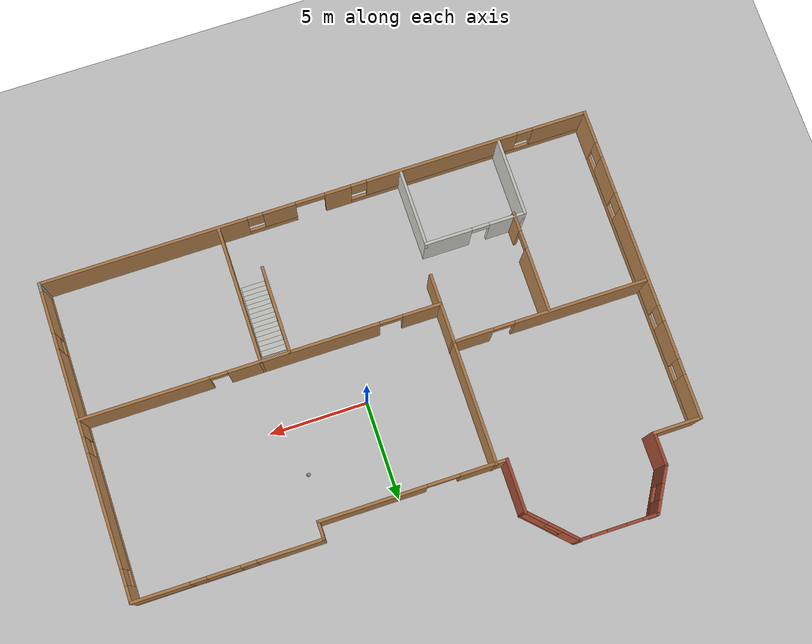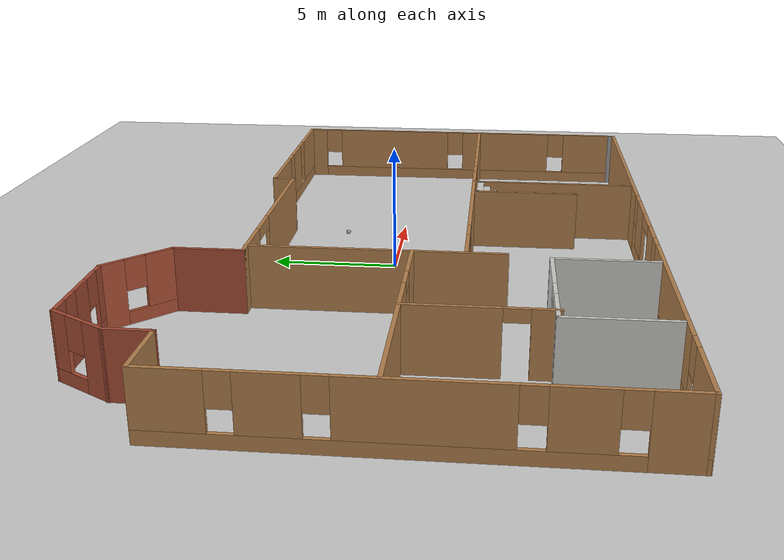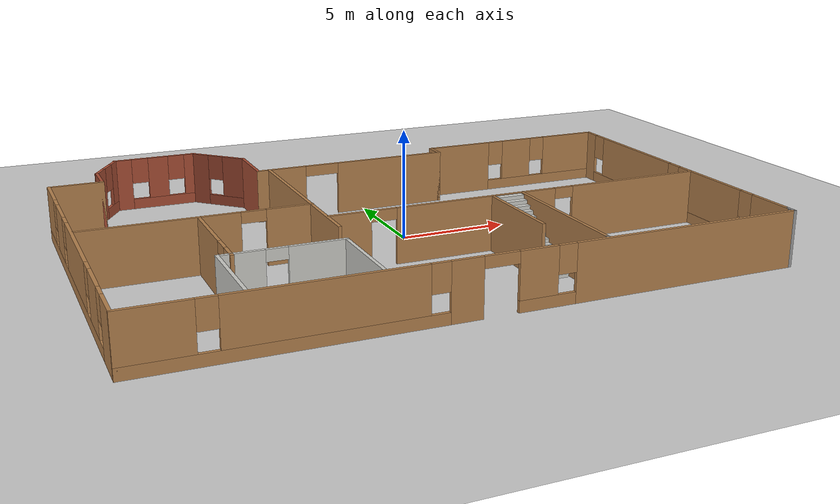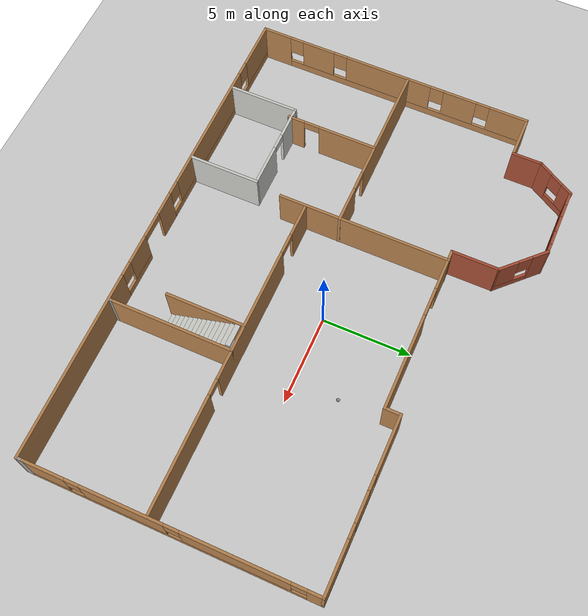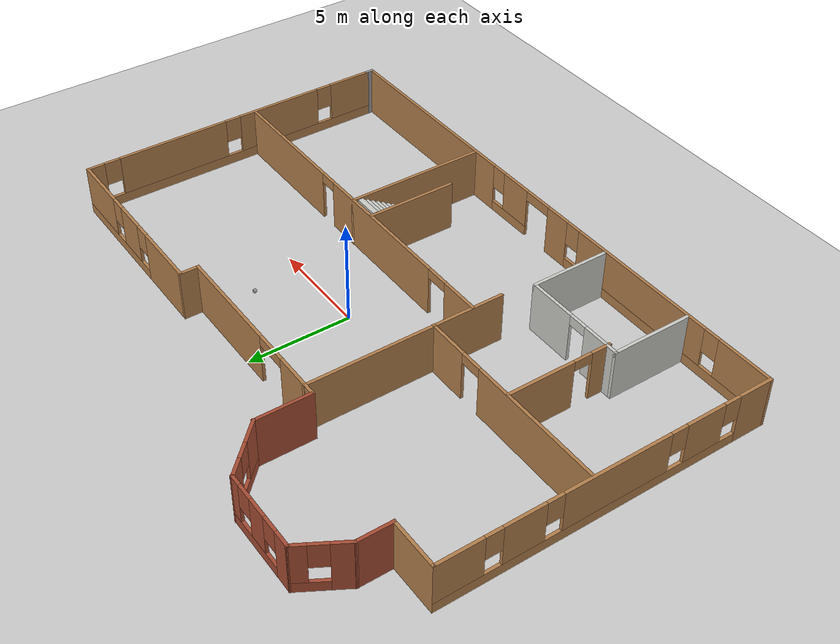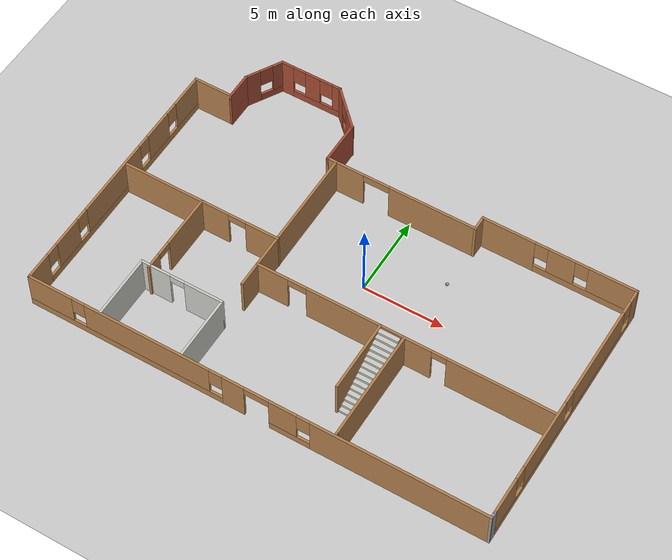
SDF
<sdf version="1.6">
 <world name="default">
  <plugin name="welcome" filename="libwelcome.so"/>
  <light name="sun" type="directional">
   <pose>0 0 10 0 -0 0</pose>
   <diffuse>0.8 0.8 0.8 1</diffuse>
   <specular>0.2 0.2 0.2 1</specular>
   <attenuation>
    <range>1000</range>
    <constant>0.9</constant>
    <linear>0.01</linear>
    <quadratic>0.001</quadratic>
   </attenuation>
   <direction>-0.5 0.1 -0.9</direction>
   <spot><inner_angle>0</inner_angle><outer_angle>0</outer_angle><falloff>0</falloff></spot>
  </light>
  <model name="ground_plane">
   <static>1</static>
   <link name="link">
    <collision name="collision">
     <geometry><plane><normal>0 0 1</normal><size>100 100</size></plane></geometry>
     <surface><friction><ode><mu>100</mu><mu2>50</mu2></ode></friction></surface>
    </collision>
    <visual name="visual">
     <cast_shadows>0</cast_shadows>
     <geometry><plane><normal>0 0 1</normal><size>100 100</size></plane></geometry>
     <material>
      <script><uri>file://media/materials/scripts/gazebo.material</uri><name>Gazebo/Grey</name></script>
     </material>
    </visual>
   </link>
  </model>
  <gravity>0 0 -9.8</gravity>
  <magnetic_field>6e-06 2.3e-05 -4.2e-05</magnetic_field>
  <atmosphere type="adiabatic"/>
  <physics type="ode">
   <max_step_size>0.001</max_step_size>
   <real_time_factor>1</real_time_factor>
   <real_time_update_rate>1000</real_time_update_rate>
  </physics>
  <scene><ambient>0.4 0.4 0.4 1</ambient><background>0.7 0.7 0.7 1</background><shadows>1</shadows></scene>
  <spherical_coordinates>
   <surface_model>EARTH_WGS84</surface_model>
   <latitude_deg>0</latitude_deg>
   <longitude_deg>0</longitude_deg>
   <elevation>0</elevation>
   <heading_deg>0</heading_deg>
  </spherical_coordinates>
  <model name="MyHome">
   <pose>-0.668255 -0.239098 0 0 -0 0</pose>
   <link name="Stairs_1">
    <visual name="Stairs_1_Visual_0">
     <pose>4.23831 -7.09651 0.083333 0 -0 -3.14159</pose>
     <geometry><box><size>1.2272 0.279705 0.166667</size></box></geometry>
     <material>
      <script><uri>file://media/materials/scripts/gazebo.material</uri><name>Gazebo/CeilingTiled</name></script>
      <ambient>1 1 1 1</ambient>
     </material>
     <meta><layer>0</layer></meta>
    </visual>
    <collision name="Stairs_1_Collision_0">
     <geometry><box><size>1.2272 0.279705 0.166667</size></box></geometry>
     <pose>4.23831 -7.09651 0.083333 0 -0 -3.14159</pose>
    </collision>
    <visual name="Stairs_1_Visual_1">
     <pose>4.23831 -6.8168 0.25 0 -0 -3.14159</pose>
     <geometry><box><size>1.2272 0.279705 0.166667</size></box></geometry>
     <material>
      <script><uri>file://media/materials/scripts/gazebo.material</uri><name>Gazebo/CeilingTiled</name></script>
      <ambient>1 1 1 1</ambient>
     </material>
     <meta><layer>0</layer></meta>
    </visual>
    <collision name="Stairs_1_Collision_1">
     <geometry><box><size>1.2272 0.279705 0.166667</size></box></geometry>
     <pose>4.23831 -6.8168 0.25 0 -0 -3.14159</pose>
    </collision>
    <visual name="Stairs_1_Visual_2">
     <pose>4.23831 -6.5371 0.416667 0 -0 -3.14159</pose>
     <geometry><box><size>1.2272 0.279705 0.166667</size></box></geometry>
     <material>
      <script><uri>file://media/materials/scripts/gazebo.material</uri><name>Gazebo/CeilingTiled</name></script>
      <ambient>1 1 1 1</ambient>
     </material>
     <meta><layer>0</layer></meta>
    </visual>
    <collision name="Stairs_1_Collision_2">
     <geometry><box><size>1.2272 0.279705 0.166667</size></box></geometry>
     <pose>4.23831 -6.5371 0.416667 0 -0 -3.14159</pose>
    </collision>
    <visual name="Stairs_1_Visual_3">
     <pose>4.23831 -6.25739 0.583333 0 -0 -3.14159</pose>
     <geometry><box><size>1.2272 0.279705 0.166667</size></box></geometry>
     <material>
      <script><uri>file://media/materials/scripts/gazebo.material</uri><name>Gazebo/CeilingTiled</name></script>
      <ambient>1 1 1 1</ambient>
     </material>
     <meta><layer>0</layer></meta>
    </visual>
    <collision name="Stairs_1_Collision_3">
     <geometry><box><size>1.2272 0.279705 0.166667</size></box></geometry>
     <pose>4.23831 -6.25739 0.583333 0 -0 -3.14159</pose>
    </collision>
    <visual name="Stairs_1_Visual_4">
     <pose>4.23831 -5.97769 0.75 0 -0 -3.14159</pose>
     <geometry><box><size>1.2272 0.279705 0.166667</size></box></geometry>
     <material>
      <script><uri>file://media/materials/scripts/gazebo.material</uri><name>Gazebo/CeilingTiled</name></script>
      <ambient>1 1 1 1</ambient>
     </material>
     <meta><layer>0</layer></meta>
    </visual>
    <collision name="Stairs_1_Collision_4">
     <geometry><box><size>1.2272 0.279705 0.166667</size></box></geometry>
     <pose>4.23831 -5.97769 0.75 0 -0 -3.14159</pose>
    </collision>
    <visual name="Stairs_1_Visual_5">
     <pose>4.23831 -5.69798 0.916667 0 -0 -3.14159</pose>
     <geometry><box><size>1.2272 0.279705 0.166667</size></box></geometry>
     <material>
      <script><uri>file://media/materials/scripts/gazebo.material</uri><name>Gazebo/CeilingTiled</name></script>
      <ambient>1 1 1 1</ambient>
     </material>
     <meta><layer>0</layer></meta>
    </visual>
    <collision name="Stairs_1_Collision_5">
     <geometry><box><size>1.2272 0.279705 0.166667</size></box></geometry>
     <pose>4.23831 -5.69798 0.916667 0 -0 -3.14159</pose>
    </collision>
    <visual name="Stairs_1_Visual_6">
     <pose>4.23831 -5.41828 1.08333 0 -0 -3.14159</pose>
     <geometry><box><size>1.2272 0.279705 0.166667</size></box></geometry>
     <material>
      <script><uri>file://media/materials/scripts/gazebo.material</uri><name>Gazebo/CeilingTiled</name></script>
      <ambient>1 1 1 1</ambient>
     </material>
     <meta><layer>0</layer></meta>
    </visual>
    <collision name="Stairs_1_Collision_6">
     <geometry><box><size>1.2272 0.279705 0.166667</size></box></geometry>
     <pose>4.23831 -5.41828 1.08333 0 -0 -3.14159</pose>
    </collision>
    <visual name="Stairs_1_Visual_7">
     <pose>4.23831 -5.13857 1.25 0 -0 -3.14159</pose>
     <geometry><box><size>1.2272 0.279705 0.166667</size></box></geometry>
     <material>
      <script><uri>file://media/materials/scripts/gazebo.material</uri><name>Gazebo/CeilingTiled</name></script>
      <ambient>1 1 1 1</ambient>
     </material>
     <meta><layer>0</layer></meta>
    </visual>
    <collision name="Stairs_1_Collision_7">
     <geometry><box><size>1.2272 0.279705 0.166667</size></box></geometry>
     <pose>4.23831 -5.13857 1.25 0 -0 -3.14159</pose>
    </collision>
    <visual name="Stairs_1_Visual_8">
     <pose>4.23831 -4.85887 1.41667 0 -0 -3.14159</pose>
     <geometry><box><size>1.2272 0.279705 0.166667</size></box></geometry>
     <material>
      <script><uri>file://media/materials/scripts/gazebo.material</uri><name>Gazebo/CeilingTiled</name></script>
      <ambient>1 1 1 1</ambient>
     </material>
     <meta><layer>0</layer></meta>
    </visual>
    <collision name="Stairs_1_Collision_8">
     <geometry><box><size>1.2272 0.279705 0.166667</size></box></geometry>
     <pose>4.23831 -4.85887 1.41667 0 -0 -3.14159</pose>
    </collision>
    <visual name="Stairs_1_Visual_9">
     <pose>4.23831 -4.57916 1.58333 0 -0 -3.14159</pose>
     <geometry><box><size>1.2272 0.279705 0.166667</size></box></geometry>
     <material>
      <script><uri>file://media/materials/scripts/gazebo.material</uri><name>Gazebo/CeilingTiled</name></script>
      <ambient>1 1 1 1</ambient>
     </material>
     <meta><layer>0</layer></meta>
    </visual>
    <collision name="Stairs_1_Collision_9">
     <geometry><box><size>1.2272 0.279705 0.166667</size></box></geometry>
     <pose>4.23831 -4.57916 1.58333 0 -0 -3.14159</pose>
    </collision>
    <visual name="Stairs_1_Visual_10">
     <pose>4.23831 -4.29946 1.75 0 -0 -3.14159</pose>
     <geometry><box><size>1.2272 0.279705 0.166667</size></box></geometry>
     <material>
      <script><uri>file://media/materials/scripts/gazebo.material</uri><name>Gazebo/CeilingTiled</name></script>
      <ambient>1 1 1 1</ambient>
     </material>
     <meta><layer>0</layer></meta>
    </visual>
    <collision name="Stairs_1_Collision_10">
     <geometry><box><size>1.2272 0.279705 0.166667</size></box></geometry>
     <pose>4.23831 -4.29946 1.75 0 -0 -3.14159</pose>
    </collision>
    <visual name="Stairs_1_Visual_11">
     <pose>4.23831 -4.01975 1.91667 0 -0 -3.14159</pose>
     <geometry><box><size>1.2272 0.279705 0.166667</size></box></geometry>
     <material>
      <script><uri>file://media/materials/scripts/gazebo.material</uri><name>Gazebo/CeilingTiled</name></script>
      <ambient>1 1 1 1</ambient>
     </material>
     <meta><layer>0</layer></meta>
    </visual>
    <collision name="Stairs_1_Collision_11">
     <geometry><box><size>1.2272 0.279705 0.166667</size></box></geometry>
     <pose>4.23831 -4.01975 1.91667 0 -0 -3.14159</pose>
    </collision>
    <visual name="Stairs_1_Visual_12">
     <pose>4.23831 -3.74005 2.08333 0 -0 -3.14159</pose>
     <geometry><box><size>1.2272 0.279705 0.166667</size></box></geometry>
     <material>
      <script><uri>file://media/materials/scripts/gazebo.material</uri><name>Gazebo/CeilingTiled</name></script>
      <ambient>1 1 1 1</ambient>
     </material>
     <meta><layer>0</layer></meta>
    </visual>
    <collision name="Stairs_1_Collision_12">
     <geometry><box><size>1.2272 0.279705 0.166667</size></box></geometry>
     <pose>4.23831 -3.74005 2.08333 0 -0 -3.14159</pose>
    </collision>
    <visual name="Stairs_1_Visual_13">
     <pose>4.23831 -3.46034 2.25 0 -0 -3.14159</pose>
     <geometry><box><size>1.2272 0.279705 0.166667</size></box></geometry>
     <material>
      <script><uri>file://media/materials/scripts/gazebo.material</uri><name>Gazebo/CeilingTiled</name></script>
      <ambient>1 1 1 1</ambient>
     </material>
     <meta><layer>0</layer></meta>
    </visual>
    <collision name="Stairs_1_Collision_13">
     <geometry><box><size>1.2272 0.279705 0.166667</size></box></geometry>
     <pose>4.23831 -3.46034 2.25 0 -0 -3.14159</pose>
    </collision>
    <visual name="Stairs_1_Visual_14">
     <pose>4.23831 -3.18064 2.41667 0 -0 -3.14159</pose>
     <geometry><box><size>1.2272 0.279705 0.166667</size></box></geometry>
     <material>
      <script><uri>file://media/materials/scripts/gazebo.material</uri><name>Gazebo/CeilingTiled</name></script>
      <ambient>1 1 1 1</ambient>
     </material>
     <meta><layer>0</layer></meta>
    </visual>
    <collision name="Stairs_1_Collision_14">
     <geometry><box><size>1.2272 0.279705 0.166667</size></box></geometry>
     <pose>4.23831 -3.18064 2.41667 0 -0 -3.14159</pose>
    </collision>
   </link>
   <link name="Wall_0">
    <pose>-14.0451 -1.83309 0 0 -0 1.5708</pose>
    <visual name="Wall_0_Visual_0">
     <pose>-7.26027 0 1.25 0 -0 0</pose>
     <geometry><box><size>1.72945 0.15 2.5</size></box></geometry>
     <material>
      <script><uri>file://media/materials/scripts/gazebo.material</uri><name>Gazebo/Wood</name></script>
      <ambient>1 1 1 1</ambient>
     </material>
     <meta><layer>0</layer></meta>
    </visual>
    <collision name="Wall_0_Collision_0">
     <geometry><box><size>1.72945 0.15 2.5</size></box></geometry>
     <pose>-7.26027 0 1.25 0 -0 0</pose>
    </collision>
    <visual name="Wall_0_Visual_1">
     <pose>0.864726 0 0.25 0 -0 0</pose>
     <geometry><box><size>14.5205 0.15 0.5</size></box></geometry>
     <material>
      <script><uri>file://media/materials/scripts/gazebo.material</uri><name>Gazebo/Wood</name></script>
      <ambient>1 1 1 1</ambient>
     </material>
     <meta><layer>0</layer></meta>
    </visual>
    <collision name="Wall_0_Collision_1">
     <geometry><box><size>14.5205 0.15 0.5</size></box></geometry>
     <pose>0.864726 0 0.25 0 -0 0</pose>
    </collision>
    <visual name="Wall_0_Visual_2">
     <pose>-4.62228 0 1.5 0 -0 0</pose>
     <geometry><box><size>1.94653 0.15 2</size></box></geometry>
     <material>
      <script><uri>file://media/materials/scripts/gazebo.material</uri><name>Gazebo/Wood</name></script>
      <ambient>1 1 1 1</ambient>
     </material>
     <meta><layer>0</layer></meta>
    </visual>
    <collision name="Wall_0_Collision_2">
     <geometry><box><size>1.94653 0.15 2</size></box></geometry>
     <pose>-4.62228 0 1.5 0 -0 0</pose>
    </collision>
    <visual name="Wall_0_Visual_3">
     <pose>-0.265957 0 1.5 0 -0 0</pose>
     <geometry><box><size>5.16612 0.15 2</size></box></geometry>
     <material>
      <script><uri>file://media/materials/scripts/gazebo.material</uri><name>Gazebo/Wood</name></script>
      <ambient>1 1 1 1</ambient>
     </material>
     <meta><layer>0</layer></meta>
    </visual>
    <collision name="Wall_0_Collision_3">
     <geometry><box><size>5.16612 0.15 2</size></box></geometry>
     <pose>-0.265957 0 1.5 0 -0 0</pose>
    </collision>
    <visual name="Wall_0_Visual_4">
     <pose>4.0919 0 1.5 0 -0 0</pose>
     <geometry><box><size>1.9496 0.15 2</size></box></geometry>
     <material>
      <script><uri>file://media/materials/scripts/gazebo.material</uri><name>Gazebo/Wood</name></script>
      <ambient>1 1 1 1</ambient>
     </material>
     <meta><layer>0</layer></meta>
    </visual>
    <collision name="Wall_0_Collision_4">
     <geometry><box><size>1.9496 0.15 2</size></box></geometry>
     <pose>4.0919 0 1.5 0 -0 0</pose>
    </collision>
    <visual name="Wall_0_Visual_5">
     <pose>6.99585 0 1.5 0 -0 0</pose>
     <geometry><box><size>2.25829 0.15 2</size></box></geometry>
     <material>
      <script><uri>file://media/materials/scripts/gazebo.material</uri><name>Gazebo/Wood</name></script>
      <ambient>1 1 1 1</ambient>
     </material>
     <meta><layer>0</layer></meta>
    </visual>
    <collision name="Wall_0_Collision_5">
     <geometry><box><size>2.25829 0.15 2</size></box></geometry>
     <pose>6.99585 0 1.5 0 -0 0</pose>
    </collision>
    <visual name="Wall_0_Visual_6">
     <pose>-5.99555 0 1.9 0 -0 0</pose>
     <geometry><box><size>0.8 0.15 1.2</size></box></geometry>
     <material>
      <script><uri>file://media/materials/scripts/gazebo.material</uri><name>Gazebo/Wood</name></script>
      <ambient>1 1 1 1</ambient>
     </material>
     <meta><layer>0</layer></meta>
    </visual>
    <collision name="Wall_0_Collision_6">
     <geometry><box><size>0.8 0.15 1.2</size></box></geometry>
     <pose>-5.99555 0 1.9 0 -0 0</pose>
    </collision>
    <visual name="Wall_0_Visual_7">
     <pose>-3.24902 0 1.9 0 -0 0</pose>
     <geometry><box><size>0.8 0.15 1.2</size></box></geometry>
     <material>
      <script><uri>file://media/materials/scripts/gazebo.material</uri><name>Gazebo/Wood</name></script>
      <ambient>1 1 1 1</ambient>
     </material>
     <meta><layer>0</layer></meta>
    </visual>
    <collision name="Wall_0_Collision_7">
     <geometry><box><size>0.8 0.15 1.2</size></box></geometry>
     <pose>-3.24902 0 1.9 0 -0 0</pose>
    </collision>
    <visual name="Wall_0_Visual_8">
     <pose>2.7171 0 1.9 0 -0 0</pose>
     <geometry><box><size>0.8 0.15 1.2</size></box></geometry>
     <material>
      <script><uri>file://media/materials/scripts/gazebo.material</uri><name>Gazebo/Wood</name></script>
      <ambient>1 1 1 1</ambient>
     </material>
     <meta><layer>0</layer></meta>
    </visual>
    <collision name="Wall_0_Collision_8">
     <geometry><box><size>0.8 0.15 1.2</size></box></geometry>
     <pose>2.7171 0 1.9 0 -0 0</pose>
    </collision>
    <visual name="Wall_0_Visual_9">
     <pose>5.46671 0 1.9 0 -0 0</pose>
     <geometry><box><size>0.8 0.15 1.2</size></box></geometry>
     <material>
      <script><uri>file://media/materials/scripts/gazebo.material</uri><name>Gazebo/Wood</name></script>
      <ambient>1 1 1 1</ambient>
     </material>
     <meta><layer>0</layer></meta>
    </visual>
    <collision name="Wall_0_Collision_9">
     <geometry><box><size>0.8 0.15 1.2</size></box></geometry>
     <pose>5.46671 0 1.9 0 -0 0</pose>
    </collision>
   </link>
   <link name="Wall_1">
    <collision name="Wall_1_Collision">
     <geometry><box><size>2.5 0.15 2.5</size></box></geometry>
     <pose>0 0 1.25 0 -0 0</pose>
    </collision>
    <visual name="Wall_1_Visual">
     <pose>0 0 1.25 0 -0 0</pose>
     <geometry><box><size>2.5 0.15 2.5</size></box></geometry>
     <material>
      <script><uri>file://media/materials/scripts/gazebo.material</uri><name>Gazebo/Wood</name></script>
      <ambient>1 1 1 1</ambient>
     </material>
     <meta><layer>0</layer></meta>
    </visual>
    <pose>-12.8701 6.21691 0 0 -0 0</pose>
   </link>
   <link name="Wall_10">
    <collision name="Wall_10_Collision">
     <geometry><box><size>2.75 0.15 2.5</size></box></geometry>
     <pose>0 0 1.25 0 -0 0</pose>
    </collision>
    <visual name="Wall_10_Visual">
     <pose>0 0 1.25 0 -0 0</pose>
     <geometry><box><size>2.75 0.15 2.5</size></box></geometry>
     <material>
      <script><uri>file://media/materials/scripts/gazebo.material</uri><name>Gazebo/Bricks</name></script>
      <ambient>1 1 1 1</ambient>
     </material>
     <meta><layer>0</layer></meta>
    </visual>
    <pose>-4.65487 6.53682 0 0 -0 -1.5708</pose>
   </link>
   <link name="Wall_11">
    <pose>0.020127 5.23682 0 0 -0 0</pose>
    <visual name="Wall_11_Visual_0">
     <pose>-3.54179 0 1.25 0 -0 0</pose>
     <geometry><box><size>2.41642 0.15 2.5</size></box></geometry>
     <material>
      <script><uri>file://media/materials/scripts/gazebo.material</uri><name>Gazebo/Wood</name></script>
      <ambient>1 1 1 1</ambient>
     </material>
     <meta><layer>0</layer></meta>
    </visual>
    <collision name="Wall_11_Collision_0">
     <geometry><box><size>2.41642 0.15 2.5</size></box></geometry>
     <pose>-3.54179 0 1.25 0 -0 0</pose>
    </collision>
    <visual name="Wall_11_Visual_1">
     <pose>2.0177 0 1.25 0 -0 0</pose>
     <geometry><box><size>5.4646 0.15 2.5</size></box></geometry>
     <material>
      <script><uri>file://media/materials/scripts/gazebo.material</uri><name>Gazebo/Wood</name></script>
      <ambient>1 1 1 1</ambient>
     </material>
     <meta><layer>0</layer></meta>
    </visual>
    <collision name="Wall_11_Collision_1">
     <geometry><box><size>5.4646 0.15 2.5</size></box></geometry>
     <pose>2.0177 0 1.25 0 -0 0</pose>
    </collision>
    <visual name="Wall_11_Visual_2">
     <pose>-1.52408 0 2.25 0 -0 0</pose>
     <geometry><box><size>1.61898 0.15 0.5</size></box></geometry>
     <material>
      <script><uri>file://media/materials/scripts/gazebo.material</uri><name>Gazebo/Wood</name></script>
      <ambient>1 1 1 1</ambient>
     </material>
     <meta><layer>0</layer></meta>
    </visual>
    <collision name="Wall_11_Collision_2">
     <geometry><box><size>1.61898 0.15 0.5</size></box></geometry>
     <pose>-1.52408 0 2.25 0 -0 0</pose>
    </collision>
   </link>
   <link name="Wall_12">
    <collision name="Wall_12_Collision">
     <geometry><box><size>1 0.15 2.5</size></box></geometry>
     <pose>0 0 1.25 0 -0 0</pose>
    </collision>
    <visual name="Wall_12_Visual">
     <pose>0 0 1.25 0 -0 0</pose>
     <geometry><box><size>1 0.15 2.5</size></box></geometry>
     <material>
      <script><uri>file://media/materials/scripts/gazebo.material</uri><name>Gazebo/Wood</name></script>
      <ambient>1 1 1 1</ambient>
     </material>
     <meta><layer>0</layer></meta>
    </visual>
    <pose>4.69513 5.66182 0 0 -0 1.5708</pose>
   </link>
   <link name="Wall_13">
    <pose>9.37013 6.08682 0 0 -0 0</pose>
    <visual name="Wall_13_Visual_0">
     <pose>-3.08641 0 1.25 0 -0 0</pose>
     <geometry><box><size>3.32717 0.15 2.5</size></box></geometry>
     <material>
      <script><uri>file://media/materials/scripts/gazebo.material</uri><name>Gazebo/Wood</name></script>
      <ambient>1 1 1 1</ambient>
     </material>
     <meta><layer>0</layer></meta>
    </visual>
    <collision name="Wall_13_Collision_0">
     <geometry><box><size>3.32717 0.15 2.5</size></box></geometry>
     <pose>-3.08641 0 1.25 0 -0 0</pose>
    </collision>
    <visual name="Wall_13_Visual_1">
     <pose>1.66359 0 0.25 0 -0 0</pose>
     <geometry><box><size>6.17282 0.15 0.5</size></box></geometry>
     <material>
      <script><uri>file://media/materials/scripts/gazebo.material</uri><name>Gazebo/Wood</name></script>
      <ambient>1 1 1 1</ambient>
     </material>
     <meta><layer>0</layer></meta>
    </visual>
    <collision name="Wall_13_Collision_1">
     <geometry><box><size>6.17282 0.15 0.5</size></box></geometry>
     <pose>1.66359 0 0.25 0 -0 0</pose>
    </collision>
    <visual name="Wall_13_Visual_2">
     <pose>0.197364 0 1.5 0 -0 0</pose>
     <geometry><box><size>1.64038 0.15 2</size></box></geometry>
     <material>
      <script><uri>file://media/materials/scripts/gazebo.material</uri><name>Gazebo/Wood</name></script>
      <ambient>1 1 1 1</ambient>
     </material>
     <meta><layer>0</layer></meta>
    </visual>
    <collision name="Wall_13_Collision_2">
     <geometry><box><size>1.64038 0.15 2</size></box></geometry>
     <pose>0.197364 0 1.5 0 -0 0</pose>
    </collision>
    <visual name="Wall_13_Visual_3">
     <pose>3.28378 0 1.5 0 -0 0</pose>
     <geometry><box><size>2.93245 0.15 2</size></box></geometry>
     <material>
      <script><uri>file://media/materials/scripts/gazebo.material</uri><name>Gazebo/Wood</name></script>
      <ambient>1 1 1 1</ambient>
     </material>
     <meta><layer>0</layer></meta>
    </visual>
    <collision name="Wall_13_Collision_3">
     <geometry><box><size>2.93245 0.15 2</size></box></geometry>
     <pose>3.28378 0 1.5 0 -0 0</pose>
    </collision>
    <visual name="Wall_13_Visual_4">
     <pose>-1.02283 0 1.9 0 -0 0</pose>
     <geometry><box><size>0.8 0.15 1.2</size></box></geometry>
     <material>
      <script><uri>file://media/materials/scripts/gazebo.material</uri><name>Gazebo/Wood</name></script>
      <ambient>1 1 1 1</ambient>
     </material>
     <meta><layer>0</layer></meta>
    </visual>
    <collision name="Wall_13_Collision_4">
     <geometry><box><size>0.8 0.15 1.2</size></box></geometry>
     <pose>-1.02283 0 1.9 0 -0 0</pose>
    </collision>
    <visual name="Wall_13_Visual_5">
     <pose>1.41755 0 1.9 0 -0 0</pose>
     <geometry><box><size>0.8 0.15 1.2</size></box></geometry>
     <material>
      <script><uri>file://media/materials/scripts/gazebo.material</uri><name>Gazebo/Wood</name></script>
      <ambient>1 1 1 1</ambient>
     </material>
     <meta><layer>0</layer></meta>
    </visual>
    <collision name="Wall_13_Collision_5">
     <geometry><box><size>0.8 0.15 1.2</size></box></geometry>
     <pose>1.41755 0 1.9 0 -0 0</pose>
    </collision>
   </link>
   <link name="Wall_14">
    <pose>14.0451 -1.71318 0 0 -0 -1.5708</pose>
    <visual name="Wall_14_Visual_0">
     <pose>-7.43229 0 1.25 0 -0 0</pose>
     <geometry><box><size>0.88541 0.15 2.5</size></box></geometry>
     <material>
      <script><uri>file://media/materials/scripts/gazebo.material</uri><name>Gazebo/Wood</name></script>
      <ambient>1 1 1 1</ambient>
     </material>
     <meta><layer>0</layer></meta>
    </visual>
    <collision name="Wall_14_Collision_0">
     <geometry><box><size>0.88541 0.15 2.5</size></box></geometry>
     <pose>-7.43229 0 1.25 0 -0 0</pose>
    </collision>
    <visual name="Wall_14_Visual_1">
     <pose>0.442705 0 0.25 0 -0 0</pose>
     <geometry><box><size>14.8646 0.15 0.5</size></box></geometry>
     <material>
      <script><uri>file://media/materials/scripts/gazebo.material</uri><name>Gazebo/Wood</name></script>
      <ambient>1 1 1 1</ambient>
     </material>
     <meta><layer>0</layer></meta>
    </visual>
    <collision name="Wall_14_Collision_1">
     <geometry><box><size>14.8646 0.15 0.5</size></box></geometry>
     <pose>0.442705 0 0.25 0 -0 0</pose>
    </collision>
    <visual name="Wall_14_Visual_2">
     <pose>-3.34546 0 1.5 0 -0 0</pose>
     <geometry><box><size>5.68826 0.15 2</size></box></geometry>
     <material>
      <script><uri>file://media/materials/scripts/gazebo.material</uri><name>Gazebo/Wood</name></script>
      <ambient>1 1 1 1</ambient>
     </material>
     <meta><layer>0</layer></meta>
    </visual>
    <collision name="Wall_14_Collision_2">
     <geometry><box><size>5.68826 0.15 2</size></box></geometry>
     <pose>-3.34546 0 1.5 0 -0 0</pose>
    </collision>
    <visual name="Wall_14_Visual_3">
     <pose>2.53321 0 1.5 0 -0 0</pose>
     <geometry><box><size>4.46909 0.15 2</size></box></geometry>
     <material>
      <script><uri>file://media/materials/scripts/gazebo.material</uri><name>Gazebo/Wood</name></script>
      <ambient>1 1 1 1</ambient>
     </material>
     <meta><layer>0</layer></meta>
    </visual>
    <collision name="Wall_14_Collision_3">
     <geometry><box><size>4.46909 0.15 2</size></box></geometry>
     <pose>2.53321 0 1.5 0 -0 0</pose>
    </collision>
    <visual name="Wall_14_Visual_4">
     <pose>6.72138 0 1.5 0 -0 0</pose>
     <geometry><box><size>2.30724 0.15 2</size></box></geometry>
     <material>
      <script><uri>file://media/materials/scripts/gazebo.material</uri><name>Gazebo/Wood</name></script>
      <ambient>1 1 1 1</ambient>
     </material>
     <meta><layer>0</layer></meta>
    </visual>
    <collision name="Wall_14_Collision_4">
     <geometry><box><size>2.30724 0.15 2</size></box></geometry>
     <pose>6.72138 0 1.5 0 -0 0</pose>
    </collision>
    <visual name="Wall_14_Visual_5">
     <pose>-6.58959 0 1.9 0 -0 0</pose>
     <geometry><box><size>0.8 0.15 1.2</size></box></geometry>
     <material>
      <script><uri>file://media/materials/scripts/gazebo.material</uri><name>Gazebo/Wood</name></script>
      <ambient>1 1 1 1</ambient>
     </material>
     <meta><layer>0</layer></meta>
    </visual>
    <collision name="Wall_14_Collision_5">
     <geometry><box><size>0.8 0.15 1.2</size></box></geometry>
     <pose>-6.58959 0 1.9 0 -0 0</pose>
    </collision>
    <visual name="Wall_14_Visual_6">
     <pose>-0.101332 0 1.9 0 -0 0</pose>
     <geometry><box><size>0.8 0.15 1.2</size></box></geometry>
     <material>
      <script><uri>file://media/materials/scripts/gazebo.material</uri><name>Gazebo/Wood</name></script>
      <ambient>1 1 1 1</ambient>
     </material>
     <meta><layer>0</layer></meta>
    </visual>
    <collision name="Wall_14_Collision_6">
     <geometry><box><size>0.8 0.15 1.2</size></box></geometry>
     <pose>-0.101332 0 1.9 0 -0 0</pose>
    </collision>
    <visual name="Wall_14_Visual_7">
     <pose>5.16776 0 1.9 0 -0 0</pose>
     <geometry><box><size>0.8 0.15 1.2</size></box></geometry>
     <material>
      <script><uri>file://media/materials/scripts/gazebo.material</uri><name>Gazebo/Wood</name></script>
      <ambient>1 1 1 1</ambient>
     </material>
     <meta><layer>0</layer></meta>
    </visual>
    <collision name="Wall_14_Collision_7">
     <geometry><box><size>0.8 0.15 1.2</size></box></geometry>
     <pose>5.16776 0 1.9 0 -0 0</pose>
    </collision>
   </link>
   <link name="Wall_15">
    <collision name="Wall_15_Collision">
     <geometry><box><size>0.5 0.15 2.5</size></box></geometry>
     <pose>0 0 1.25 0 -0 0</pose>
    </collision>
    <visual name="Wall_15_Visual">
     <pose>0 0 1.25 0 -0 0</pose>
     <geometry><box><size>0.5 0.15 2.5</size></box></geometry>
     <material>
      <script><uri>file://media/materials/scripts/gazebo.material</uri><name>Gazebo/Grey</name></script>
      <ambient>1 1 1 1</ambient>
     </material>
     <meta><layer>0</layer></meta>
    </visual>
    <pose>14.0451 -9.68818 0 0 -0 -1.5708</pose>
   </link>
   <link name="Wall_16">
    <pose>0 -9.87313 0 0 -0 -3.14088</pose>
    <visual name="Wall_16_Visual_0">
     <pose>-8.81676 0 1.25 0 -0 0</pose>
     <geometry><box><size>10.6067 0.15 2.5</size></box></geometry>
     <material>
      <script><uri>file://media/materials/scripts/gazebo.material</uri><name>Gazebo/Wood</name></script>
      <ambient>1 1 1 1</ambient>
     </material>
     <meta><layer>0</layer></meta>
    </visual>
    <collision name="Wall_16_Collision_0">
     <geometry><box><size>10.6067 0.15 2.5</size></box></geometry>
     <pose>-8.81676 0 1.25 0 -0 0</pose>
    </collision>
    <visual name="Wall_16_Visual_1">
     <pose>1.14769 0 1.25 0 -0 0</pose>
     <geometry><box><size>1.35719 0.15 2.5</size></box></geometry>
     <material>
      <script><uri>file://media/materials/scripts/gazebo.material</uri><name>Gazebo/Wood</name></script>
      <ambient>1 1 1 1</ambient>
     </material>
     <meta><layer>0</layer></meta>
    </visual>
    <collision name="Wall_16_Collision_1">
     <geometry><box><size>1.35719 0.15 2.5</size></box></geometry>
     <pose>1.14769 0 1.25 0 -0 0</pose>
    </collision>
    <visual name="Wall_16_Visual_2">
     <pose>-2.27215 0 0.25 0 -0 0</pose>
     <geometry><box><size>2.48248 0.15 0.5</size></box></geometry>
     <material>
      <script><uri>file://media/materials/scripts/gazebo.material</uri><name>Gazebo/Wood</name></script>
      <ambient>1 1 1 1</ambient>
     </material>
     <meta><layer>0</layer></meta>
    </visual>
    <collision name="Wall_16_Collision_2">
     <geometry><box><size>2.48248 0.15 0.5</size></box></geometry>
     <pose>-2.27215 0 0.25 0 -0 0</pose>
    </collision>
    <visual name="Wall_16_Visual_3">
     <pose>7.97321 0 0.25 0 -0 0</pose>
     <geometry><box><size>12.2938 0.15 0.5</size></box></geometry>
     <material>
      <script><uri>file://media/materials/scripts/gazebo.material</uri><name>Gazebo/Wood</name></script>
      <ambient>1 1 1 1</ambient>
     </material>
     <meta><layer>0</layer></meta>
    </visual>
    <collision name="Wall_16_Collision_3">
     <geometry><box><size>12.2938 0.15 0.5</size></box></geometry>
     <pose>7.97321 0 0.25 0 -0 0</pose>
    </collision>
    <visual name="Wall_16_Visual_4">
     <pose>-1.87215 0 1.5 0 -0 0</pose>
     <geometry><box><size>1.68248 0.15 2</size></box></geometry>
     <material>
      <script><uri>file://media/materials/scripts/gazebo.material</uri><name>Gazebo/Wood</name></script>
      <ambient>1 1 1 1</ambient>
     </material>
     <meta><layer>0</layer></meta>
    </visual>
    <collision name="Wall_16_Collision_4">
     <geometry><box><size>1.68248 0.15 2</size></box></geometry>
     <pose>-1.87215 0 1.5 0 -0 0</pose>
    </collision>
    <visual name="Wall_16_Visual_5">
     <pose>-1.87215 0 1.5 0 -0 0</pose>
     <geometry><box><size>1.68248 0.15 2</size></box></geometry>
     <material>
      <script><uri>file://media/materials/scripts/gazebo.material</uri><name>Gazebo/Wood</name></script>
      <ambient>1 1 1 1</ambient>
     </material>
     <meta><layer>0</layer></meta>
    </visual>
    <collision name="Wall_16_Collision_5">
     <geometry><box><size>1.68248 0.15 2</size></box></geometry>
     <pose>-1.87215 0 1.5 0 -0 0</pose>
    </collision>
    <visual name="Wall_16_Visual_6">
     <pose>6.55168 0 1.5 0 -0 0</pose>
     <geometry><box><size>7.85079 0.15 2</size></box></geometry>
     <material>
      <script><uri>file://media/materials/scripts/gazebo.material</uri><name>Gazebo/Wood</name></script>
      <ambient>1 1 1 1</ambient>
     </material>
     <meta><layer>0</layer></meta>
    </visual>
    <collision name="Wall_16_Collision_6">
     <geometry><box><size>7.85079 0.15 2</size></box></geometry>
     <pose>6.55168 0 1.5 0 -0 0</pose>
    </collision>
    <visual name="Wall_16_Visual_7">
     <pose>12.6986 0 1.5 0 -0 0</pose>
     <geometry><box><size>2.84305 0.15 2</size></box></geometry>
     <material>
      <script><uri>file://media/materials/scripts/gazebo.material</uri><name>Gazebo/Wood</name></script>
      <ambient>1 1 1 1</ambient>
     </material>
     <meta><layer>0</layer></meta>
    </visual>
    <collision name="Wall_16_Collision_7">
     <geometry><box><size>2.84305 0.15 2</size></box></geometry>
     <pose>12.6986 0 1.5 0 -0 0</pose>
    </collision>
    <visual name="Wall_16_Visual_8">
     <pose>-3.11339 0 1.9 0 -0 0</pose>
     <geometry><box><size>0.8 0.15 1.2</size></box></geometry>
     <material>
      <script><uri>file://media/materials/scripts/gazebo.material</uri><name>Gazebo/Wood</name></script>
      <ambient>1 1 1 1</ambient>
     </material>
     <meta><layer>0</layer></meta>
    </visual>
    <collision name="Wall_16_Collision_8">
     <geometry><box><size>0.8 0.15 1.2</size></box></geometry>
     <pose>-3.11339 0 1.9 0 -0 0</pose>
    </collision>
    <visual name="Wall_16_Visual_9">
     <pose>2.22629 0 1.9 0 -0 0</pose>
     <geometry><box><size>0.8 0.15 1.2</size></box></geometry>
     <material>
      <script><uri>file://media/materials/scripts/gazebo.material</uri><name>Gazebo/Wood</name></script>
      <ambient>1 1 1 1</ambient>
     </material>
     <meta><layer>0</layer></meta>
    </visual>
    <collision name="Wall_16_Collision_9">
     <geometry><box><size>0.8 0.15 1.2</size></box></geometry>
     <pose>2.22629 0 1.9 0 -0 0</pose>
    </collision>
    <visual name="Wall_16_Visual_10">
     <pose>10.8771 0 1.9 0 -0 0</pose>
     <geometry><box><size>0.8 0.15 1.2</size></box></geometry>
     <material>
      <script><uri>file://media/materials/scripts/gazebo.material</uri><name>Gazebo/Wood</name></script>
      <ambient>1 1 1 1</ambient>
     </material>
     <meta><layer>0</layer></meta>
    </visual>
    <collision name="Wall_16_Collision_10">
     <geometry><box><size>0.8 0.15 1.2</size></box></geometry>
     <pose>10.8771 0 1.9 0 -0 0</pose>
    </collision>
    <visual name="Wall_16_Visual_11">
     <pose>-0.280907 0 2.25 0 -0 0</pose>
     <geometry><box><size>1.5 0.15 0.5</size></box></geometry>
     <material>
      <script><uri>file://media/materials/scripts/gazebo.material</uri><name>Gazebo/Wood</name></script>
      <ambient>1 1 1 1</ambient>
     </material>
     <meta><layer>0</layer></meta>
    </visual>
    <collision name="Wall_16_Collision_11">
     <geometry><box><size>1.5 0.15 0.5</size></box></geometry>
     <pose>-0.280907 0 2.25 0 -0 0</pose>
    </collision>
    <visual name="Wall_16_Visual_12">
     <pose>-0.280907 0 2.25 0 -0 0</pose>
     <geometry><box><size>1.5 0.15 0.5</size></box></geometry>
     <material>
      <script><uri>file://media/materials/scripts/gazebo.material</uri><name>Gazebo/Wood</name></script>
      <ambient>1 1 1 1</ambient>
     </material>
     <meta><layer>0</layer></meta>
    </visual>
    <collision name="Wall_16_Collision_12">
     <geometry><box><size>1.5 0.15 0.5</size></box></geometry>
     <pose>-0.280907 0 2.25 0 -0 0</pose>
    </collision>
   </link>
   <link name="Wall_18">
    <collision name="Wall_18_Collision">
     <geometry><box><size>4 0.15 2.5</size></box></geometry>
     <pose>0 0 1.25 0 -0 0</pose>
    </collision>
    <visual name="Wall_18_Visual">
     <pose>0 0 1.25 0 -0 0</pose>
     <geometry><box><size>4 0.15 2.5</size></box></geometry>
     <material>
      <script><uri>file://media/materials/scripts/gazebo.material</uri><name>Gazebo/CeilingTiled</name></script>
      <ambient>1 1 1 1</ambient>
     </material>
     <meta><layer>0</layer></meta>
    </visual>
    <pose>-9.48977 -7.85645 0 0 -0 1.5708</pose>
   </link>
   <link name="Wall_19">
    <pose>-6.93977 -5.93145 0 0 -0 0</pose>
    <visual name="Wall_19_Visual_0">
     <pose>-1.67104 0 1.25 0 -0 0</pose>
     <geometry><box><size>1.90791 0.15 2.5</size></box></geometry>
     <material>
      <script><uri>file://media/materials/scripts/gazebo.material</uri><name>Gazebo/CeilingTiled</name></script>
      <ambient>1 1 1 1</ambient>
     </material>
     <meta><layer>0</layer></meta>
    </visual>
    <collision name="Wall_19_Collision_0">
     <geometry><box><size>1.90791 0.15 2.5</size></box></geometry>
     <pose>-1.67104 0 1.25 0 -0 0</pose>
    </collision>
    <visual name="Wall_19_Visual_1">
     <pose>1.40396 0 1.25 0 -0 0</pose>
     <geometry><box><size>2.44209 0.15 2.5</size></box></geometry>
     <material>
      <script><uri>file://media/materials/scripts/gazebo.material</uri><name>Gazebo/CeilingTiled</name></script>
      <ambient>1 1 1 1</ambient>
     </material>
     <meta><layer>0</layer></meta>
    </visual>
    <collision name="Wall_19_Collision_1">
     <geometry><box><size>2.44209 0.15 2.5</size></box></geometry>
     <pose>1.40396 0 1.25 0 -0 0</pose>
    </collision>
    <visual name="Wall_19_Visual_2">
     <pose>-0.267089 0 2.25 0 -0 0</pose>
     <geometry><box><size>0.9 0.15 0.5</size></box></geometry>
     <material>
      <script><uri>file://media/materials/scripts/gazebo.material</uri><name>Gazebo/CeilingTiled</name></script>
      <ambient>1 1 1 1</ambient>
     </material>
     <meta><layer>0</layer></meta>
    </visual>
    <collision name="Wall_19_Collision_2">
     <geometry><box><size>0.9 0.15 0.5</size></box></geometry>
     <pose>-0.267089 0 2.25 0 -0 0</pose>
    </collision>
   </link>
   <link name="Wall_20">
    <collision name="Wall_20_Collision">
     <geometry><box><size>4 0.15 2.5</size></box></geometry>
     <pose>0 0 1.25 0 -0 0</pose>
    </collision>
    <visual name="Wall_20_Visual">
     <pose>0 0 1.25 0 -0 0</pose>
     <geometry><box><size>4 0.15 2.5</size></box></geometry>
     <material>
      <script><uri>file://media/materials/scripts/gazebo.material</uri><name>Gazebo/CeilingTiled</name></script>
      <ambient>1 1 1 1</ambient>
     </material>
     <meta><layer>0</layer></meta>
    </visual>
    <pose>-4.38977 -7.85645 0 0 -0 -1.5708</pose>
   </link>
   <link name="Wall_23">
    <pose>-8.9665 -3.49191 0 0 -0 -1.5708</pose>
    <visual name="Wall_23_Visual_0">
     <pose>-0.951987 0 1.25 0 -0 0</pose>
     <geometry><box><size>3.34603 0.15 2.5</size></box></geometry>
     <material>
      <script><uri>file://media/materials/scripts/gazebo.material</uri><name>Gazebo/Wood</name></script>
      <ambient>1 1 1 1</ambient>
     </material>
     <meta><layer>0</layer></meta>
    </visual>
    <collision name="Wall_23_Collision_0">
     <geometry><box><size>3.34603 0.15 2.5</size></box></geometry>
     <pose>-0.951987 0 1.25 0 -0 0</pose>
    </collision>
    <visual name="Wall_23_Visual_1">
     <pose>2.12301 0 1.25 0 -0 0</pose>
     <geometry><box><size>1.00397 0.15 2.5</size></box></geometry>
     <material>
      <script><uri>file://media/materials/scripts/gazebo.material</uri><name>Gazebo/Wood</name></script>
      <ambient>1 1 1 1</ambient>
     </material>
     <meta><layer>0</layer></meta>
    </visual>
    <collision name="Wall_23_Collision_1">
     <geometry><box><size>1.00397 0.15 2.5</size></box></geometry>
     <pose>2.12301 0 1.25 0 -0 0</pose>
    </collision>
    <visual name="Wall_23_Visual_2">
     <pose>1.17103 0 2.25 0 -0 0</pose>
     <geometry><box><size>0.9 0.15 0.5</size></box></geometry>
     <material>
      <script><uri>file://media/materials/scripts/gazebo.material</uri><name>Gazebo/Wood</name></script>
      <ambient>1 1 1 1</ambient>
     </material>
     <meta><layer>0</layer></meta>
    </visual>
    <collision name="Wall_23_Collision_2">
     <geometry><box><size>0.9 0.15 0.5</size></box></geometry>
     <pose>1.17103 0 2.25 0 -0 0</pose>
    </collision>
   </link>
   <link name="Wall_27">
    <collision name="Wall_27_Collision">
     <geometry><box><size>9.75 0.15 2.5</size></box></geometry>
     <pose>0 0 1.25 0 -0 0</pose>
    </collision>
    <visual name="Wall_27_Visual">
     <pose>0 0 1.25 0 -0 0</pose>
     <geometry><box><size>9.75 0.15 2.5</size></box></geometry>
     <material>
      <script><uri>file://media/materials/scripts/gazebo.material</uri><name>Gazebo/Wood</name></script>
      <ambient>1 1 1 1</ambient>
     </material>
     <meta><layer>0</layer></meta>
    </visual>
    <pose>-4.10966 0.455685 0 0 -0 -1.5708</pose>
   </link>
   <link name="Wall_29">
    <pose>4.98079 -2.87589 0 0 -0 0</pose>
    <visual name="Wall_29_Visual_0">
     <pose>-8.13754 0 1.25 0 -0 0</pose>
     <geometry><box><size>1.97493 0.15 2.5</size></box></geometry>
     <material>
      <script><uri>file://media/materials/scripts/gazebo.material</uri><name>Gazebo/Wood</name></script>
      <ambient>1 1 1 1</ambient>
     </material>
     <meta><layer>0</layer></meta>
    </visual>
    <collision name="Wall_29_Collision_0">
     <geometry><box><size>1.97493 0.15 2.5</size></box></geometry>
     <pose>-8.13754 0 1.25 0 -0 0</pose>
    </collision>
    <visual name="Wall_29_Visual_1">
     <pose>-2.16879 0 1.25 0 -0 0</pose>
     <geometry><box><size>7.65792 0.15 2.5</size></box></geometry>
     <material>
      <script><uri>file://media/materials/scripts/gazebo.material</uri><name>Gazebo/Wood</name></script>
      <ambient>1 1 1 1</ambient>
     </material>
     <meta><layer>0</layer></meta>
    </visual>
    <collision name="Wall_29_Collision_1">
     <geometry><box><size>7.65792 0.15 2.5</size></box></geometry>
     <pose>-2.16879 0 1.25 0 -0 0</pose>
    </collision>
    <visual name="Wall_29_Visual_2">
     <pose>5.84258 0 1.25 0 -0 0</pose>
     <geometry><box><size>6.56483 0.15 2.5</size></box></geometry>
     <material>
      <script><uri>file://media/materials/scripts/gazebo.material</uri><name>Gazebo/Wood</name></script>
      <ambient>1 1 1 1</ambient>
     </material>
     <meta><layer>0</layer></meta>
    </visual>
    <collision name="Wall_29_Collision_2">
     <geometry><box><size>6.56483 0.15 2.5</size></box></geometry>
     <pose>5.84258 0 1.25 0 -0 0</pose>
    </collision>
    <visual name="Wall_29_Visual_3">
     <pose>-6.57391 0 2.25 0 -0 0</pose>
     <geometry><box><size>1.15233 0.15 0.5</size></box></geometry>
     <material>
      <script><uri>file://media/materials/scripts/gazebo.material</uri><name>Gazebo/Wood</name></script>
      <ambient>1 1 1 1</ambient>
     </material>
     <meta><layer>0</layer></meta>
    </visual>
    <collision name="Wall_29_Collision_3">
     <geometry><box><size>1.15233 0.15 0.5</size></box></geometry>
     <pose>-6.57391 0 2.25 0 -0 0</pose>
    </collision>
    <visual name="Wall_29_Visual_4">
     <pose>2.11017 0 2.25 0 -0 0</pose>
     <geometry><box><size>0.9 0.15 0.5</size></box></geometry>
     <material>
      <script><uri>file://media/materials/scripts/gazebo.material</uri><name>Gazebo/Wood</name></script>
      <ambient>1 1 1 1</ambient>
     </material>
     <meta><layer>0</layer></meta>
    </visual>
    <collision name="Wall_29_Collision_4">
     <geometry><box><size>0.9 0.15 0.5</size></box></geometry>
     <pose>2.11017 0 2.25 0 -0 0</pose>
    </collision>
   </link>
   <link name="Wall_31">
    <collision name="Wall_31_Collision">
     <geometry><box><size>7 0.15 2.5</size></box></geometry>
     <pose>0 0 1.25 0 -0 0</pose>
    </collision>
    <visual name="Wall_31_Visual">
     <pose>0 0 1.25 0 -0 0</pose>
     <geometry><box><size>7 0.15 2.5</size></box></geometry>
     <material>
      <script><uri>file://media/materials/scripts/gazebo.material</uri><name>Gazebo/Wood</name></script>
      <ambient>1 1 1 1</ambient>
     </material>
     <meta><layer>0</layer></meta>
    </visual>
    <pose>4.99284 -6.30089 0 0 -0 -1.5708</pose>
   </link>
   <link name="Wall_32">
    <collision name="Wall_32_Collision">
     <geometry><box><size>0.15 0.15 2.5</size></box></geometry>
     <pose>0 0 1.25 0 -0 0</pose>
    </collision>
    <visual name="Wall_32_Visual">
     <pose>0 0 1.25 0 -0 0</pose>
     <geometry><box><size>0.15 0.15 2.5</size></box></geometry>
     <material>
      <script><uri>file://media/materials/scripts/gazebo.material</uri><name>Gazebo/Grey</name></script>
      <ambient>1 1 1 1</ambient>
     </material>
     <meta><layer>0</layer></meta>
    </visual>
    <pose>4.99284 -9.72589 0 0 -0 0</pose>
   </link>
   <link name="Wall_35">
    <pose>-9.01722 -0.899311 0 0 -0 3.14159</pose>
    <visual name="Wall_35_Visual_0">
     <pose>-3.94946 0 1.25 0 -0 0</pose>
     <geometry><box><size>2.10107 0.15 2.5</size></box></geometry>
     <material>
      <script><uri>file://media/materials/scripts/gazebo.material</uri><name>Gazebo/Wood</name></script>
      <ambient>1 1 1 1</ambient>
     </material>
     <meta><layer>0</layer></meta>
    </visual>
    <collision name="Wall_35_Collision_0">
     <geometry><box><size>2.10107 0.15 2.5</size></box></geometry>
     <pose>-3.94946 0 1.25 0 -0 0</pose>
    </collision>
    <visual name="Wall_35_Visual_1">
     <pose>1.59508 0 1.25 0 -0 0</pose>
     <geometry><box><size>6.80983 0.15 2.5</size></box></geometry>
     <material>
      <script><uri>file://media/materials/scripts/gazebo.material</uri><name>Gazebo/Wood</name></script>
      <ambient>1 1 1 1</ambient>
     </material>
     <meta><layer>0</layer></meta>
    </visual>
    <collision name="Wall_35_Collision_1">
     <geometry><box><size>6.80983 0.15 2.5</size></box></geometry>
     <pose>1.59508 0 1.25 0 -0 0</pose>
    </collision>
    <visual name="Wall_35_Visual_2">
     <pose>-2.35438 0 2.25 0 -0 0</pose>
     <geometry><box><size>1.0891 0.15 0.5</size></box></geometry>
     <material>
      <script><uri>file://media/materials/scripts/gazebo.material</uri><name>Gazebo/Wood</name></script>
      <ambient>1 1 1 1</ambient>
     </material>
     <meta><layer>0</layer></meta>
    </visual>
    <collision name="Wall_35_Collision_2">
     <geometry><box><size>1.0891 0.15 0.5</size></box></geometry>
     <pose>-2.35438 0 2.25 0 -0 0</pose>
    </collision>
   </link>
   <link name="Wall_37">
    <collision name="Wall_37_Collision">
     <geometry><box><size>4.5 0.15 2.5</size></box></geometry>
     <pose>0 0 1.25 0 -0 0</pose>
    </collision>
    <visual name="Wall_37_Visual">
     <pose>0 0 1.25 0 -0 0</pose>
     <geometry><box><size>4.5 0.15 2.5</size></box></geometry>
     <material>
      <script><uri>file://media/materials/scripts/gazebo.material</uri><name>Gazebo/Wood</name></script>
      <ambient>1 1 1 1</ambient>
     </material>
     <meta><layer>0</layer></meta>
    </visual>
    <pose>3.53355 -5.07983 0 0 -0 -1.5708</pose>
   </link>
   <link name="Wall_6">
    <collision name="Wall_6_Collision">
     <geometry><box><size>1.75 0.15 2.5</size></box></geometry>
     <pose>0 0 1.25 0 -0 0</pose>
    </collision>
    <visual name="Wall_6_Visual">
     <pose>0 0 1.25 0 -0 0</pose>
     <geometry><box><size>1.75 0.15 2.5</size></box></geometry>
     <material>
      <script><uri>file://media/materials/scripts/gazebo.material</uri><name>Gazebo/Bricks</name></script>
      <ambient>1 1 1 1</ambient>
     </material>
     <meta><layer>0</layer></meta>
    </visual>
    <pose>-11.6951 7.01691 0 0 -0 1.5708</pose>
   </link>
   <link name="Wall_7">
    <pose>-11.1076 8.83449 0 0 -0 1.0472</pose>
    <visual name="Wall_7_Visual_0">
     <pose>-0.770976 0 1.25 0 -0 0</pose>
     <geometry><box><size>0.958049 0.15 2.5</size></box></geometry>
     <material>
      <script><uri>file://media/materials/scripts/gazebo.material</uri><name>Gazebo/Bricks</name></script>
      <ambient>1 1 1 1</ambient>
     </material>
     <meta><layer>0</layer></meta>
    </visual>
    <collision name="Wall_7_Collision_0">
     <geometry><box><size>0.958049 0.15 2.5</size></box></geometry>
     <pose>-0.770976 0 1.25 0 -0 0</pose>
    </collision>
    <visual name="Wall_7_Visual_1">
     <pose>0.479024 0 0.25 0 -0 0</pose>
     <geometry><box><size>1.54195 0.15 0.5</size></box></geometry>
     <material>
      <script><uri>file://media/materials/scripts/gazebo.material</uri><name>Gazebo/Bricks</name></script>
      <ambient>1 1 1 1</ambient>
     </material>
     <meta><layer>0</layer></meta>
    </visual>
    <collision name="Wall_7_Collision_1">
     <geometry><box><size>1.54195 0.15 0.5</size></box></geometry>
     <pose>0.479024 0 0.25 0 -0 0</pose>
    </collision>
    <visual name="Wall_7_Visual_2">
     <pose>0.879024 0 1.5 0 -0 0</pose>
     <geometry><box><size>0.741951 0.15 2</size></box></geometry>
     <material>
      <script><uri>file://media/materials/scripts/gazebo.material</uri><name>Gazebo/Bricks</name></script>
      <ambient>1 1 1 1</ambient>
     </material>
     <meta><layer>0</layer></meta>
    </visual>
    <collision name="Wall_7_Collision_2">
     <geometry><box><size>0.741951 0.15 2</size></box></geometry>
     <pose>0.879024 0 1.5 0 -0 0</pose>
    </collision>
    <visual name="Wall_7_Visual_3">
     <pose>0.108049 0 1.9 0 -0 0</pose>
     <geometry><box><size>0.8 0.15 1.2</size></box></geometry>
     <material>
      <script><uri>file://media/materials/scripts/gazebo.material</uri><name>Gazebo/Bricks</name></script>
      <ambient>1 1 1 1</ambient>
     </material>
     <meta><layer>0</layer></meta>
    </visual>
    <collision name="Wall_7_Collision_3">
     <geometry><box><size>0.8 0.15 1.2</size></box></geometry>
     <pose>0.108049 0 1.9 0 -0 0</pose>
    </collision>
   </link>
   <link name="Wall_8">
    <pose>-8.59513 9.85207 0 0 -0 0</pose>
    <visual name="Wall_8_Visual_0">
     <pose>-1.57611 0 1.25 0 -0 0</pose>
     <geometry><box><size>0.847784 0.15 2.5</size></box></geometry>
     <material>
      <script><uri>file://media/materials/scripts/gazebo.material</uri><name>Gazebo/Bricks</name></script>
      <ambient>1 1 1 1</ambient>
     </material>
     <meta><layer>0</layer></meta>
    </visual>
    <collision name="Wall_8_Collision_0">
     <geometry><box><size>0.847784 0.15 2.5</size></box></geometry>
     <pose>-1.57611 0 1.25 0 -0 0</pose>
    </collision>
    <visual name="Wall_8_Visual_1">
     <pose>0.423892 0 0.25 0 -0 0</pose>
     <geometry><box><size>3.15222 0.15 0.5</size></box></geometry>
     <material>
      <script><uri>file://media/materials/scripts/gazebo.material</uri><name>Gazebo/Bricks</name></script>
      <ambient>1 1 1 1</ambient>
     </material>
     <meta><layer>0</layer></meta>
    </visual>
    <collision name="Wall_8_Collision_1">
     <geometry><box><size>3.15222 0.15 0.5</size></box></geometry>
     <pose>0.423892 0 0.25 0 -0 0</pose>
    </collision>
    <visual name="Wall_8_Visual_2">
     <pose>0.136814 0 1.5 0 -0 0</pose>
     <geometry><box><size>0.978061 0.15 2</size></box></geometry>
     <material>
      <script><uri>file://media/materials/scripts/gazebo.material</uri><name>Gazebo/Bricks</name></script>
      <ambient>1 1 1 1</ambient>
     </material>
     <meta><layer>0</layer></meta>
    </visual>
    <collision name="Wall_8_Collision_2">
     <geometry><box><size>0.978061 0.15 2</size></box></geometry>
     <pose>0.136814 0 1.5 0 -0 0</pose>
    </collision>
    <visual name="Wall_8_Visual_3">
     <pose>1.71292 0 1.5 0 -0 0</pose>
     <geometry><box><size>0.574155 0.15 2</size></box></geometry>
     <material>
      <script><uri>file://media/materials/scripts/gazebo.material</uri><name>Gazebo/Bricks</name></script>
      <ambient>1 1 1 1</ambient>
     </material>
     <meta><layer>0</layer></meta>
    </visual>
    <collision name="Wall_8_Collision_3">
     <geometry><box><size>0.574155 0.15 2</size></box></geometry>
     <pose>1.71292 0 1.5 0 -0 0</pose>
    </collision>
    <visual name="Wall_8_Visual_4">
     <pose>-0.752216 0 1.9 0 -0 0</pose>
     <geometry><box><size>0.8 0.15 1.2</size></box></geometry>
     <material>
      <script><uri>file://media/materials/scripts/gazebo.material</uri><name>Gazebo/Bricks</name></script>
      <ambient>1 1 1 1</ambient>
     </material>
     <meta><layer>0</layer></meta>
    </visual>
    <collision name="Wall_8_Collision_4">
     <geometry><box><size>0.8 0.15 1.2</size></box></geometry>
     <pose>-0.752216 0 1.9 0 -0 0</pose>
    </collision>
    <visual name="Wall_8_Visual_5">
     <pose>1.02584 0 1.9 0 -0 0</pose>
     <geometry><box><size>0.8 0.15 1.2</size></box></geometry>
     <material>
      <script><uri>file://media/materials/scripts/gazebo.material</uri><name>Gazebo/Bricks</name></script>
      <ambient>1 1 1 1</ambient>
     </material>
     <meta><layer>0</layer></meta>
    </visual>
    <collision name="Wall_8_Collision_5">
     <geometry><box><size>0.8 0.15 1.2</size></box></geometry>
     <pose>1.02584 0 1.9 0 -0 0</pose>
    </collision>
   </link>
   <link name="Wall_9">
    <pose>-5.6625 8.84445 0 0 -0 -0.785398</pose>
    <visual name="Wall_9_Visual_0">
     <pose>-1.01292 0 1.25 0 -0 0</pose>
     <geometry><box><size>0.97416 0.15 2.5</size></box></geometry>
     <material>
      <script><uri>file://media/materials/scripts/gazebo.material</uri><name>Gazebo/Bricks</name></script>
      <ambient>1 1 1 1</ambient>
     </material>
     <meta><layer>0</layer></meta>
    </visual>
    <collision name="Wall_9_Collision_0">
     <geometry><box><size>0.97416 0.15 2.5</size></box></geometry>
     <pose>-1.01292 0 1.25 0 -0 0</pose>
    </collision>
    <visual name="Wall_9_Visual_1">
     <pose>0.48708 0 0.25 0 -0 0</pose>
     <geometry><box><size>2.02584 0.15 0.5</size></box></geometry>
     <material>
      <script><uri>file://media/materials/scripts/gazebo.material</uri><name>Gazebo/Bricks</name></script>
      <ambient>1 1 1 1</ambient>
     </material>
     <meta><layer>0</layer></meta>
    </visual>
    <collision name="Wall_9_Collision_1">
     <geometry><box><size>2.02584 0.15 0.5</size></box></geometry>
     <pose>0.48708 0 0.25 0 -0 0</pose>
    </collision>
    <visual name="Wall_9_Visual_2">
     <pose>0.88708 0 1.5 0 -0 0</pose>
     <geometry><box><size>1.22584 0.15 2</size></box></geometry>
     <material>
      <script><uri>file://media/materials/scripts/gazebo.material</uri><name>Gazebo/Bricks</name></script>
      <ambient>1 1 1 1</ambient>
     </material>
     <meta><layer>0</layer></meta>
    </visual>
    <collision name="Wall_9_Collision_2">
     <geometry><box><size>1.22584 0.15 2</size></box></geometry>
     <pose>0.88708 0 1.5 0 -0 0</pose>
    </collision>
    <visual name="Wall_9_Visual_3">
     <pose>-0.12584 0 1.9 0 -0 0</pose>
     <geometry><box><size>0.8 0.15 1.2</size></box></geometry>
     <material>
      <script><uri>file://media/materials/scripts/gazebo.material</uri><name>Gazebo/Bricks</name></script>
      <ambient>1 1 1 1</ambient>
     </material>
     <meta><layer>0</layer></meta>
    </visual>
    <collision name="Wall_9_Collision_3">
     <geometry><box><size>0.8 0.15 1.2</size></box></geometry>
     <pose>-0.12584 0 1.9 0 -0 0</pose>
    </collision>
   </link>
   <static>1</static>
  </model>
  <model name="my_ball">
   <link name="link_0">
    <inertial>
     <mass>1</mass>
     <inertia><ixx>0.1</ixx><ixy>0</ixy><ixz>0</ixz><iyy>0.1</iyy><iyz>0</iyz><izz>0.1</izz></inertia>
    </inertial>
    <visual name="visual">
     <geometry><sphere><radius>0.1</radius></sphere></geometry>
     <material>
      <lighting>1</lighting>
      <script><uri>file://media/materials/scripts/gazebo.material</uri><name>Gazebo/Grey</name></script>
      <shader type="pixel"><normal_map>__default__</normal_map></shader>
      <ambient>1 1 1 1</ambient>
      <diffuse>1 1 1 1</diffuse>
      <specular>1 1 1 1</specular>
      <emissive>1 1 1 1</emissive>
     </material>
    </visual>
    <collision name="collision">
     <geometry><sphere><radius>0.1</radius></sphere></geometry>
     <surface>
      <friction>
       <ode><mu>1</mu><mu2>1</mu2><fdir1>0 0 0</fdir1><slip1>0</slip1><slip2>0</slip2></ode>
       <torsional>
        <coefficient>1</coefficient>
        <patch_radius>0</patch_radius>
        <surface_radius>0</surface_radius>
        <use_patch_radius>1</use_patch_radius>
        <ode><slip>0</slip></ode>
       </torsional>
      </friction>
      <bounce><restitution_coefficient>0</restitution_coefficient><threshold>1e+06</threshold></bounce>
      <contact>
       <collide_without_contact>0</collide_without_contact>
       <collide_without_contact_bitmask>1</collide_without_contact_bitmask>
       <collide_bitmask>1</collide_bitmask>
       <ode>
        <soft_cfm>0</soft_cfm>
        <soft_erp>0.2</soft_erp>
        <kp>1e+13</kp>
        <kd>1</kd>
        <max_vel>0.01</max_vel>
        <min_depth>0</min_depth>
       </ode>
       <bullet>
        <split_impulse>1</split_impulse>
        <split_impulse_penetration_threshold>-0.01</split_impulse_penetration_threshold>
        <soft_cfm>0</soft_cfm>
        <soft_erp>0.2</soft_erp>
        <kp>1e+13</kp>
        <kd>1</kd>
       </bullet>
      </contact>
     </surface>
    </collision>
   </link>
   <static>0</static>
   <pose>3.80749 2.50346 0.1 0 -0 0</pose>
  </model>
  <plugin filename="libcollision_map_creator.so" name="collision_map_creator"/>
 </world>
</sdf>
